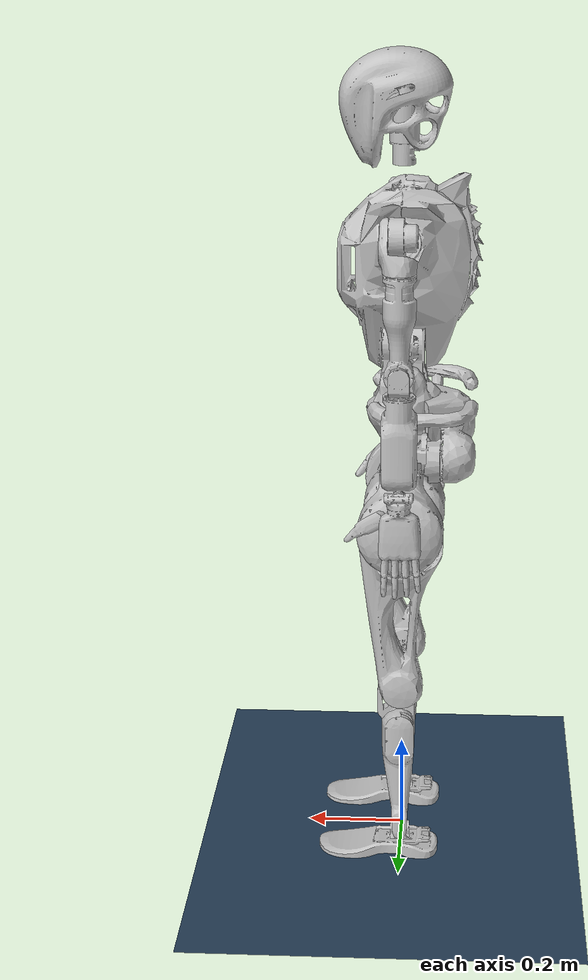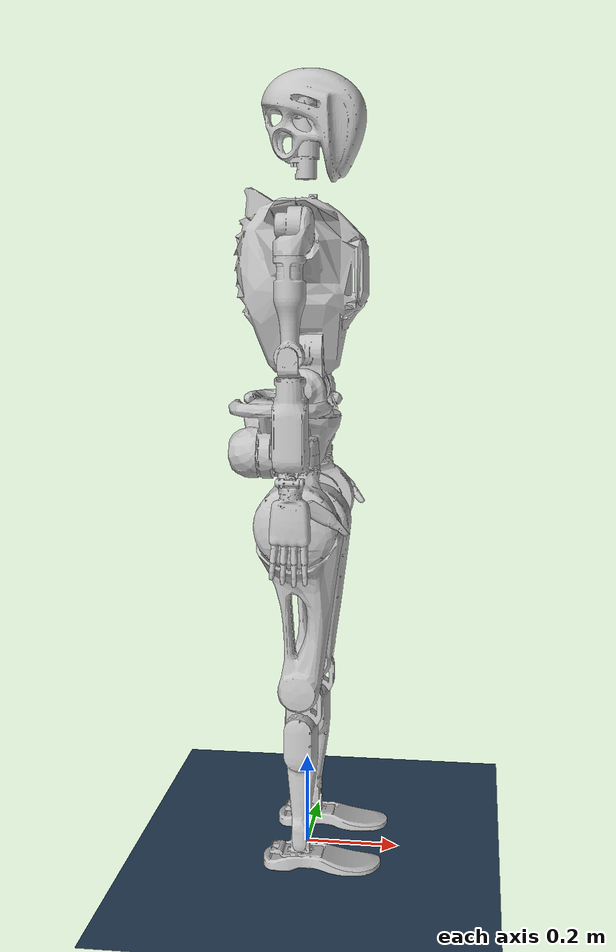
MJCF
<mujoco model="gr1t2 scene">
    <include file="gr1t2.xml"/>

    <statistic center="0 0 1" extent="1.8"/>

    <visual>
        <headlight diffuse="0.6 0.6 0.6" ambient="0.3 0.3 0.3" specular="0 0 0"/>
        <rgba haze="0.15 0.25 0.35 1"/>
        <global azimuth="160" elevation="-20"/>
    </visual>

    <asset>
        <texture type="skybox" builtin="gradient" rgb1="0.3 0.5 0.7" rgb2="0 0 0" width="512" height="3072"/>
        <texture type="2d" name="groundplane" builtin="checker" mark="edge" rgb1="0.2 0.3 0.4" rgb2="0.1 0.2 0.3"
                 markrgb="0.8 0.8 0.8" width="300" height="300"/>
        <material name="groundplane" texture="groundplane" texuniform="true" texrepeat="5 5" reflectance="0.2"/>
    </asset>

    <worldbody>
        <light pos="0 0 3.5" dir="0 0 -1" directional="true"/>
        <geom name="floor" size="0 0 0.05" type="plane" material="groundplane"/>
    </worldbody>

    <keyframe>
        <key name="home"
             qpos="
    0 0 0 0 0 0 0
    0 0 0 0 0 0
    0 0 0 0 0 0
    0 0 0
    0 0 0
    0 0 0 0 0 0 0
    0 0 0 0 0 0 0"/>
    </keyframe>
</mujoco>

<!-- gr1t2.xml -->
<mujoco model="gr1t2">
    <compiler angle="radian" meshdir="assets" autolimits="true"/>

    <default>
        <default class="gr1t2">
            <joint damping="1" armature="0.1"/>
            <default class="visual">
                <geom type="mesh" contype="0" conaffinity="0" group="2" material="black"/>
            </default>
            <default class="collision">
                <geom group="3" mass="0" density="0"/>
                <default class="foot">
                    <geom type="capsule" size=".014"/>
                    <default class="foot1">
                        <geom fromto="-.035 0 -0.056 .02 0 -0.045"/>
                    </default>
                    <default class="foot2">
                        <geom fromto=".02 0 -0.045 .115 0 -0.056"/>
                    </default>
                    <default class="foot3">
                        <geom fromto=".14 -.03 -0.056 .14 .03 -0.056"/>
                    </default>
                </default>
            </default>
            <site size="0.001" rgba="0.5 0.5 0.5 0.3" group="4"/>
        </default>
    </default>

    <asset>
        <material name="black" rgba="0.1 0.1 0.1 1"/>
        <material name="white" rgba="1 1 1 1"/>

        <mesh name="base" file="base.STL"/>
        <mesh name="l_thigh_roll" file="l_thigh_roll.STL"/>
        <mesh name="l_thigh_yaw" file="l_thigh_yaw.STL"/>
        <mesh name="l_thigh_pitch" file="l_thigh_pitch.STL"/>
        <mesh name="l_shank_pitch" file="l_shank_pitch.STL"/>
        <mesh name="l_foot_pitch" file="l_foot_pitch.STL"/>
        <mesh name="l_foot_roll" file="l_foot_roll.STL"/>
        <mesh name="r_thigh_roll" file="r_thigh_roll.STL"/>
        <mesh name="r_thigh_yaw" file="r_thigh_yaw.STL"/>
        <mesh name="r_thigh_pitch" file="r_thigh_pitch.STL"/>
        <mesh name="r_shank_pitch" file="r_shank_pitch.STL"/>
        <mesh name="r_foot_pitch" file="r_foot_pitch.STL"/>
        <mesh name="r_foot_roll" file="r_foot_roll.STL"/>
        <mesh name="waist_yaw" file="waist_yaw.STL"/>
        <mesh name="waist_pitch" file="waist_pitch.STL"/>
        <mesh name="waist_roll" file="waist_roll.STL"/>
        <mesh name="head_yaw" file="head_yaw.STL"/>
        <mesh name="head_roll" file="head_roll.STL"/>
        <mesh name="head_pitch" file="head_pitch.STL"/>
        <mesh name="l_upper_arm_pitch" file="l_upper_arm_pitch.STL"/>
        <mesh name="l_upper_arm_roll" file="l_upper_arm_roll.STL"/>
        <mesh name="l_upper_arm_yaw" file="l_upper_arm_yaw.STL"/>
        <mesh name="l_lower_arm_pitch" file="l_lower_arm_pitch.STL"/>
        <mesh name="l_hand_yaw" file="l_hand_yaw.STL"/>
        <mesh name="l_hand_roll" file="l_hand_roll.STL"/>
        <mesh name="l_hand_pitch" file="l_hand_pitch.STL"/>
        <mesh name="r_upper_arm_pitch" file="r_upper_arm_pitch.STL"/>
        <mesh name="r_upper_arm_roll" file="r_upper_arm_roll.STL"/>
        <mesh name="r_upper_arm_yaw" file="r_upper_arm_yaw.STL"/>
        <mesh name="r_lower_arm_pitch" file="r_lower_arm_pitch.STL"/>
        <mesh name="r_hand_yaw" file="r_hand_yaw.STL"/>
        <mesh name="r_hand_roll" file="r_hand_roll.STL"/>
        <mesh name="r_hand_pitch" file="r_hand_pitch.STL"/>
    </asset>

    <worldbody>
        <light mode="targetbodycom" target="base" pos="2 0 2.5"/>

        <body name="base" pos="0 0 0.95" childclass="gr1t2">
            <inertial pos="-0.0508888 0.000109183 -0.0455794" quat="0.706855 0.707166 0.0123661 -0.0109307" mass="6.45117" diaginertia="0.0149302 0.0127972 0.00640923"/>
            <freejoint/>
            <geom class="visual" rgba="0.752941 0.752941 0.752941 1" mesh="base"/>
            <body name="l_thigh_roll" pos="-0.047999 0.105 -0.057493">
                <inertial pos="0.04163 3.4568e-05 -0.0021382" quat="0.575529 0.581908 -0.40597 0.406619" mass="1.1437" diaginertia="0.00117548 0.00100413 0.000943892"/>
                <joint name="l_hip_roll" pos="0 0 0" axis="1 0 0" range="-0.09 0.79"/>
                <geom type="mesh" rgba="0.75294 0.75294 0.75294 1" mesh="l_thigh_roll"/>
                <body name="l_thigh_yaw" pos="0.048 0 -0.030499">
                    <inertial pos="0.00018348 0.046462 -0.10389" quat="0.704251 -0.0226446 -0.0453749 0.708138" mass="3.9888" diaginertia="0.0163385 0.0100158 0.00924336"/>
                    <joint name="l_hip_yaw" pos="0 0 0" axis="0 0 1" range="-0.7 0.7"/>
                    <geom type="mesh" rgba="0.75294 0.75294 0.75294 1" mesh="l_thigh_yaw"/>
                    <body name="l_thigh_pitch" pos="0 0 -0.11">
                        <inertial pos="0.0028493 -0.021688 -0.090886" quat="0.707411 -0.0125435 -0.0111264 0.706604" mass="6.369" diaginertia="0.0532352 0.0425096 0.0134363"/>
                        <joint name="l_hip_pitch" pos="0 0 0" axis="0 1 0" range="-1.75 0.7"/>
                        <geom type="mesh" rgba="0.75294 0.75294 0.75294 1" mesh="l_thigh_pitch"/>
                        <body name="l_shank_pitch" pos="0 2.4606e-05 -0.36">
                            <inertial pos="0.0024312 -2.9945e-05 -0.11554" quat="0.692137 0.00134576 0.00140217 0.721764" mass="2.1895" diaginertia="0.0162703 0.016117 0.00113627"/>
                            <joint name="l_knee_pitch" pos="0 0 0" axis="0 1 0" range="-0.09 1.92"/>
                            <geom type="mesh" rgba="0.75294 0.75294 0.75294 1" mesh="l_shank_pitch"/>
                            <body name="l_foot_pitch" pos="0 2.3239e-05 -0.34">
                                <inertial pos="1.748e-11 4.3804e-11 0" quat="1 3.42295e-05 -6.07362e-06 -2.07897e-10" mass="0.080335" diaginertia="5.1022e-06 4.3976e-06 4.188e-06"/>
                                <joint name="l_ankle_pitch" pos="0 0 0" axis="0 1 0" range="-1.05 0.52"/>
                                <geom type="mesh" rgba="0.75294 0.75294 0.75294 1" mesh="l_foot_pitch"/>
                                <body name="l_foot_roll">
                                    <inertial pos="0.039446 0.00035757 -0.038101" quat="-0.00087198 0.709539 -0.00177594 0.704664" mass="0.584" diaginertia="0.00271032 0.0024027 0.000369145"/>
                                    <joint name="l_ankle_roll" pos="0 0 0" axis="1 0 0" range="-0.44 0.44"/>
                                    <geom type="mesh" rgba="0.75294 0.75294 0.75294 1" mesh="l_foot_roll"/>
                                </body>
                            </body>
                        </body>
                    </body>
                </body>
            </body>
            <body name="r_thigh_roll" pos="-0.047999 -0.105 -0.057508">
                <inertial pos="0.0416295 3.45678e-05 -0.00213824" quat="0.57555 0.581927 -0.405942 0.406589" mass="1.14367" diaginertia="0.00117548 0.00100417 0.000943891"/>
                <joint name="r_hip_roll" pos="0 0 0" axis="1 0 0" range="-0.79 0.09"/>
                <geom type="mesh" rgba="0.752941 0.752941 0.752941 1" mesh="r_thigh_roll"/>
                <body name="r_thigh_yaw" pos="0.048 0 -0.030499">
                    <inertial pos="-0.00159762 -0.0464482 -0.103899" quat="0.709186 -0.0420808 -0.0194028 0.703497" mass="3.98882" diaginertia="0.0163388 0.0100142 0.00924469"/>
                    <joint name="r_hip_yaw" pos="0 0 0" axis="0 0 1" range="-0.7 0.7"/>
                    <geom type="mesh" rgba="0.752941 0.752941 0.752941 1" mesh="r_thigh_yaw"/>
                    <body name="r_thigh_pitch" pos="0 0 -0.11">
                        <inertial pos="0.002842 0.0217009 -0.0919987" quat="0.706586 -0.0113774 -0.0126258 0.707423" mass="6.36895" diaginertia="0.0532349 0.0424818 0.0134641"/>
                        <joint name="r_hip_pitch" pos="0 0 0" axis="0 1 0" range="-1.75 0.7"/>
                        <geom type="mesh" rgba="0.752941 0.752941 0.752941 1" mesh="r_thigh_pitch"/>
                        <body name="r_shank_pitch" pos="0 2.4606e-05 -0.36">
                            <inertial pos="0.00236658 4.56188e-05 -0.115532" quat="0.71872 0.00154106 0.00120241 0.695296" mass="2.18947" diaginertia="0.0162708 0.0161183 0.00113536"/>
                            <joint name="r_knee_pitch" pos="0 0 0" axis="0 1 0" range="-0.09 1.92"/>
                            <geom type="mesh" rgba="0.752941 0.752941 0.752941 1" mesh="r_shank_pitch"/>
                            <body name="r_foot_pitch" pos="0 2.3239e-05 -0.34">
                                <inertial pos="1.75705e-11 4.40342e-11 0" quat="1 3.42336e-05 -6.07409e-06 -2.07938e-10" mass="0.0799219" diaginertia="5.11122e-06 4.40004e-06 4.17954e-06"/>
                                <joint name="r_ankle_pitch" pos="0 0 0" axis="0 1 0" range="-1.05 0.52"/>
                                <geom type="mesh" rgba="0.752941 0.752941 0.752941 1" mesh="r_foot_pitch"/>
                                <body name="r_foot_roll">
                                    <inertial pos="0.043909 -0.00032475 -0.039419" quat="0.000727105 0.710094 0.00155959 0.704104" mass="0.58089" diaginertia="0.00280098 0.0024886 0.000368482"/>
                                    <joint name="r_ankle_roll" pos="0 0 0" axis="1 0 0" range="-0.44 0.44"/>
                                    <geom type="mesh" rgba="0.75294 0.75294 0.75294 1" mesh="r_foot_roll"/>
                                </body>
                            </body>
                        </body>
                    </body>
                </body>
            </body>
            <body name="waist_yaw" pos="0 0 0.0065">
                <inertial pos="-0.010388 -0.00169636 0.0224709" quat="8.03475e-05 0.752953 -6.91813e-06 0.658075" mass="0.37886" diaginertia="0.000387148 0.000354992 0.000193448"/>
                <joint name="waist_yaw" pos="0 0 0" axis="0 0 1" range="-1.05 1.05"/>
                <geom type="mesh" rgba="0.752941 0.752941 0.752941 1" mesh="waist_yaw"/>
                <body name="waist_pitch" pos="0 0 0.055">
                    <inertial pos="0.00229173 -0.00229364 0.0425378" quat="0.998452 -0.0194486 0.0162447 0.0495079" mass="4.40328" diaginertia="0.00487449 0.00487146 0.00355351"/>
                    <joint name="waist_pitch" pos="0 0 0" axis="0 1 0" range="-0.52 1.22"/>
                    <geom type="mesh" rgba="0.752941 0.752941 0.752941 1" mesh="waist_pitch"/>
                    <body name="waist_roll" pos="0 0 0.085">
                        <inertial pos="-0.00982804 -1.2954e-05 0.160653" quat="0.999997 1.84368e-05 -0.00260593 -4.00255e-05" mass="7.34393" diaginertia="0.0305266 0.0217567 0.0136783"/>
                        <joint name="waist_roll" pos="0 0 0" axis="1 0 0" range="-0.7 0.7"/>
                        <geom type="mesh" rgba="0.752941 0.752941 0.752941 1" mesh="waist_roll"/>
                        <body name="head_yaw" pos="0 -2.3548e-05 0.34453">
                            <inertial pos="0.000255273 -1.43143e-05 0.0571737" quat="0.698659 0.111628 0.112302 0.697713" mass="0.168425" diaginertia="0.00013241 0.000126266 6.86988e-05"/>
                            <joint name="head_yaw" pos="0 0 0" axis="0 0 1" range="-2.71 2.71"/>
                            <geom type="mesh" rgba="0.752941 0.752941 0.752941 1" mesh="head_yaw"/>
                            <body name="head_roll" pos="0 0 0.1225">
                                <inertial pos="-0.000539717 0.00299723 -0.00194711" quat="0.498775 0.509039 0.50481 0.487104" mass="0.0189574" diaginertia="5.66154e-06 3.71917e-06 3.07146e-06"/>
                                <joint name="head_roll" pos="0 0 0" axis="1 0 0" range="-0.35 0.35"/>
                                <geom type="mesh" rgba="0.752941 0.752941 0.752941 1" mesh="head_roll"/>
                                <body name="head_pitch">
                                    <inertial pos="0.0179937 0.000157203 -0.0107884" quat="-0.00317787 0.890883 0.0047882 0.454197" mass="0.315067" diaginertia="0.00129389 0.00105273 0.000852366"/>
                                    <joint name="head_pitch" pos="0 0 0" axis="0 1 0" range="-0.52 0.35"/>
                                    <geom type="mesh" rgba="0.752941 0.752941 0.752941 1" mesh="head_pitch"/>
                                </body>
                            </body>
                        </body>
                        <body name="l_upper_arm_pitch" pos="0 0.12661 0.21727" quat="0.976289 0.216473 0 0">
                            <inertial pos="0.00515733 0.0588337 0.000122944" quat="0.999793 0.0203364 -0.000117253 0.0011083" mass="0.777394" diaginertia="0.000546411 0.000340581 0.000319359"/>
                            <joint name="l_shoulder_pitch" pos="0 0 0" axis="0 1 0" range="-2.79 1.92"/>
                            <geom type="mesh" rgba="0.752941 0.752941 0.752941 1" mesh="l_upper_arm_pitch"/>
                            <body name="l_upper_arm_roll" pos="0 0.067 0" quat="0.976289 -0.216473 0 0">
                                <inertial pos="0.0260055 0.0238305 -0.0272078" quat="0.906707 0.298574 0.228734 -0.190834" mass="0.084111" diaginertia="9.66711e-05 8.99184e-05 2.54726e-05"/>
                                <joint name="l_shoulder_roll" pos="0 0 0" axis="1 0 0" range="-0.57 3.27"/>
                                <geom type="mesh" rgba="0.752941 0.752941 0.752941 1" mesh="l_upper_arm_roll"/>
                                <body name="l_upper_arm_yaw" pos="0 0.040004 -0.057502">
                                    <inertial pos="-4.12427e-05 0.00135031 -0.101007" quat="0.706543 0.0248514 -0.0268343 0.706724" mass="0.78993" diaginertia="0.000480863 0.000420363 0.000315608"/>
                                    <joint name="l_shoulder_yaw" pos="0 0 0" axis="0 0 1" range="-2.97 2.97"/>
                                    <geom type="mesh" rgba="0.752941 0.752941 0.752941 1" mesh="l_upper_arm_yaw"/>
                                    <body name="l_lower_arm_pitch" pos="0 1.28869e-05 -0.188546">
                                        <inertial pos="2.60519e-07 0.0196937 -0.0210902" quat="0.675254 -0.209845 0.209837 0.675252" mass="0.0553958" diaginertia="2.92256e-05 2.63267e-05 1.3293e-05"/>
                                        <joint name="l_elbow_pitch" pos="0 0 0" axis="0 1 0" range="-2.27 2.27"/>
                                        <geom type="mesh" rgba="0.752941 0.752941 0.752941 1" mesh="l_lower_arm_pitch"/>
                                        <body name="l_hand_yaw" pos="0 0 -0.0405043">
                                            <inertial pos="-4.20996e-05 0.000336116 -0.0559829" quat="0.999784 -0.0189715 -0.00676208 0.00509819" mass="0.606076"
                                                      diaginertia="0.000747266 0.000709257 0.000280769"/>
                                            <joint name="l_wrist_yaw" pos="0 0 0" axis="0 0 1" range="-2.97 2.97"/>
                                            <geom type="mesh" rgba="0.752941 0.752941 0.752941 1" mesh="l_hand_yaw"/>
                                            <body name="l_hand_roll" pos="0 1.3775e-05 -0.20155">
                                                <inertial pos="-1.5483e-08 -0.00044846 -1.9394e-08" quat="0 0.7071 0 0.707114" mass="0.0054473" diaginertia="3.6036e-07 3.5527e-07 7.344e-08"/>
                                                <joint name="l_wrist_roll" pos="0 0 0" axis="1 0 0" range="-0.61 0.61"/>
                                                <geom type="mesh" rgba="0.75294 0.75294 0.75294 1" mesh="l_hand_roll"/>
                                                <body name="l_hand_pitch">
                                                    <inertial pos="0.0071289 -0.0026192 -0.078567" quat="0.298548 0.646339 0.631172 0.307795" mass="0.5239"
                                                              diaginertia="0.000345825 0.000211684 0.000195941"/>
                                                    <joint name="l_wrist_pitch" pos="0 0 0" axis="0 1 0" range="-0.61 0.61"/>
                                                    <geom type="mesh" rgba="0.75294 0.75294 0.75294 1" mesh="l_hand_pitch"/>
                                                </body>
                                            </body>
                                        </body>
                                    </body>
                                </body>
                            </body>
                        </body>
                        <body name="r_upper_arm_pitch" pos="0 -0.12664 0.21725" quat="0.976303 -0.216409 0 0">
                            <inertial pos="0.00515735 -0.0587916 0.000122944" quat="0.999675 -0.0254775 -0.000125407 -0.000494276" mass="0.777391" diaginertia="0.00054641 0.000340601 0.00031934"/>
                            <joint name="r_shoulder_pitch" pos="0 0 0" axis="0 1 0" range="-2.79 1.92"/>
                            <geom type="mesh" rgba="0.752941 0.752941 0.752941 1" mesh="r_upper_arm_pitch"/>
                            <body name="r_upper_arm_roll" pos="0 -0.067 0" quat="0.976303 0.216409 0 0">
                                <inertial pos="0.0260059 -0.0238264 -0.0272109" quat="0.906733 -0.298529 0.228698 0.190821" mass="0.0840989" diaginertia="9.66585e-05 8.99068e-05 2.54689e-05"/>
                                <joint name="r_shoulder_roll" pos="0 0 0" axis="1 0 0" range="-3.27 0.57"/>
                                <geom type="mesh" rgba="0.752941 0.752941 0.752941 1" mesh="r_upper_arm_roll"/>
                                <body name="r_upper_arm_yaw" pos="0 -0.039996 -0.057473">
                                    <inertial pos="0.00017083 -0.00124148 -0.100981" quat="0.712176 -0.02561 0.0250075 0.701088" mass="0.78993" diaginertia="0.000481112 0.000420147 0.000315576"/>
                                    <joint name="r_shoulder_yaw" pos="0 0 0" axis="0 0 1" range="-2.97 2.97"/>
                                    <geom type="mesh" rgba="0.752941 0.752941 0.752941 1" mesh="r_upper_arm_yaw"/>
                                    <body name="r_lower_arm_pitch" pos="0 1.28859e-05 -0.18853">
                                        <inertial pos="2.54538e-07 -0.0196908 -0.0210929" quat="0.675237 0.209883 -0.209892 0.67524" mass="0.0553958" diaginertia="2.92256e-05 2.63267e-05 1.3293e-05"/>
                                        <joint name="r_elbow_pitch" pos="0 0 0" axis="0 1 0" range="-2.27 2.27"/>
                                        <geom type="mesh" rgba="0.752941 0.752941 0.752941 1" mesh="r_lower_arm_pitch"/>
                                        <body name="r_hand_yaw" pos="0 0 -0.0405">
                                            <inertial pos="0.000158044 -0.000478822 -0.0559415" quat="0.999772 0.019131 0.00724385 -0.00608553" mass="0.606076"
                                                      diaginertia="0.000748132 0.000708413 0.000280748"/>
                                            <joint name="r_wrist_yaw" pos="0 0 0" axis="0 0 1" range="-2.97 2.97"/>
                                            <geom type="mesh" rgba="0.752941 0.752941 0.752941 1" mesh="r_hand_yaw"/>
                                            <body name="r_hand_roll" pos="0 1.3775e-05 -0.20153">
                                                <inertial pos="1.5545e-08 0.00044846 4.1938e-08" quat="0 0.707105 0 0.707108" mass="0.0054473" diaginertia="3.6036e-07 3.5527e-07 7.344e-08"/>
                                                <joint name="r_wrist_roll" pos="0 0 0" axis="1 0 0" range="-0.61 0.61"/>
                                                <geom type="mesh" rgba="0.75294 0.75294 0.75294 1" mesh="r_hand_roll"/>
                                                <body name="r_hand_pitch">
                                                    <inertial pos="0.0060733 0.0018907 -0.084578" quat="0.647336 -0.27161 -0.257721 0.6639" mass="0.53221"
                                                              diaginertia="0.000319947 0.000196296 0.000182477"/>
                                                    <joint name="r_wrist_pitch" pos="0 0 0" axis="0 1 0" range="-0.61 0.61"/>
                                                    <geom type="mesh" rgba="0.75294 0.75294 0.75294 1" mesh="r_hand_pitch"/>
                                                </body>
                                            </body>
                                        </body>
                                    </body>
                                </body>
                            </body>
                        </body>
                    </body>
                </body>
            </body>
        </body>
    </worldbody>

    <actuator>
        <!-- left leg -->
        <motor class="gr1t2" name="l_hip_roll" joint="l_hip_roll" ctrlrange="-80 80"/>
        <motor class="gr1t2" name="l_hip_yaw" joint="l_hip_yaw" ctrlrange="-60 60"/>
        <motor class="gr1t2" name="l_hip_pitch" joint="l_hip_pitch" ctrlrange="-160 160"/>
        <motor class="gr1t2" name="l_knee_pitch" joint="l_knee_pitch" ctrlrange="-160 160"/>
        <motor class="gr1t2" name="l_ankle_pitch" joint="l_ankle_pitch" ctrlrange="-16 16"/>
        <motor class="gr1t2" name="l_ankle_roll" joint="l_ankle_roll" ctrlrange="-8 8"/>

        <!-- right leg -->
        <motor class="gr1t2" name="r_hip_roll" joint="r_hip_roll" ctrlrange="-80 80"/>
        <motor class="gr1t2" name="r_hip_yaw" joint="r_hip_yaw" ctrlrange="-60 60"/>
        <motor class="gr1t2" name="r_hip_pitch" joint="r_hip_pitch" ctrlrange="-160 160"/>
        <motor class="gr1t2" name="r_knee_pitch" joint="r_knee_pitch" ctrlrange="-160 160"/>
        <motor class="gr1t2" name="r_ankle_pitch" joint="r_ankle_pitch" ctrlrange="-16 16"/>
        <motor class="gr1t2" name="r_ankle_roll" joint="r_ankle_roll" ctrlrange="-8 8"/>

        <!-- waist -->
        <motor class="gr1t2" name="waist_yaw" joint="waist_yaw" ctrlrange="-82.5 82.5"/>
        <motor class="gr1t2" name="waist_pitch" joint="waist_pitch" ctrlrange="-82.5 82.5"/>
        <motor class="gr1t2" name="waist_roll" joint="waist_roll" ctrlrange="-82.5 82.5"/>

        <!-- head -->
        <motor class="gr1t2" name="head_yaw" joint="head_yaw" ctrlrange="-10.2 10.2"/>
        <motor class="gr1t2" name="head_roll" joint="head_roll" ctrlrange="-3.95 3.95"/>
        <motor class="gr1t2" name="head_pitch" joint="head_pitch" ctrlrange="-3.95 3.95"/>

        <!-- left arm -->
        <motor class="gr1t2" name="l_shoulder_pitch" joint="l_shoulder_pitch" ctrlrange="-38 38"/>
        <motor class="gr1t2" name="l_shoulder_roll" joint="l_shoulder_roll" ctrlrange="-38 38"/>
        <motor class="gr1t2" name="l_shoulder_yaw" joint="l_shoulder_yaw" ctrlrange="-30 30"/>
        <motor class="gr1t2" name="l_elbow_pitch" joint="l_elbow_pitch" ctrlrange="-30 30"/>
        <motor class="gr1t2" name="l_wrist_yaw" joint="l_wrist_yaw" ctrlrange="-10.2 10.2"/>
        <motor class="gr1t2" name="l_wrist_roll" joint="l_wrist_roll" ctrlrange="-3.95 3.95"/>
        <motor class="gr1t2" name="l_wrist_pitch" joint="l_wrist_pitch" ctrlrange="-3.95 3.95"/>

        <!-- right arm -->
        <motor class="gr1t2" name="r_shoulder_pitch" joint="r_shoulder_pitch" ctrlrange="-38 38"/>
        <motor class="gr1t2" name="r_shoulder_roll" joint="r_shoulder_roll" ctrlrange="-38 38"/>
        <motor class="gr1t2" name="r_shoulder_yaw" joint="r_shoulder_yaw" ctrlrange="-30 30"/>
        <motor class="gr1t2" name="r_elbow_pitch" joint="r_elbow_pitch" ctrlrange="-30 30"/>
        <motor class="gr1t2" name="r_wrist_yaw" joint="r_wrist_yaw" ctrlrange="-10.2 10.2"/>
        <motor class="gr1t2" name="r_wrist_roll" joint="r_wrist_roll" ctrlrange="-3.95 3.95"/>
        <motor class="gr1t2" name="r_wrist_pitch" joint="r_wrist_pitch" ctrlrange="-3.95 3.95"/>
    </actuator>
</mujoco>
